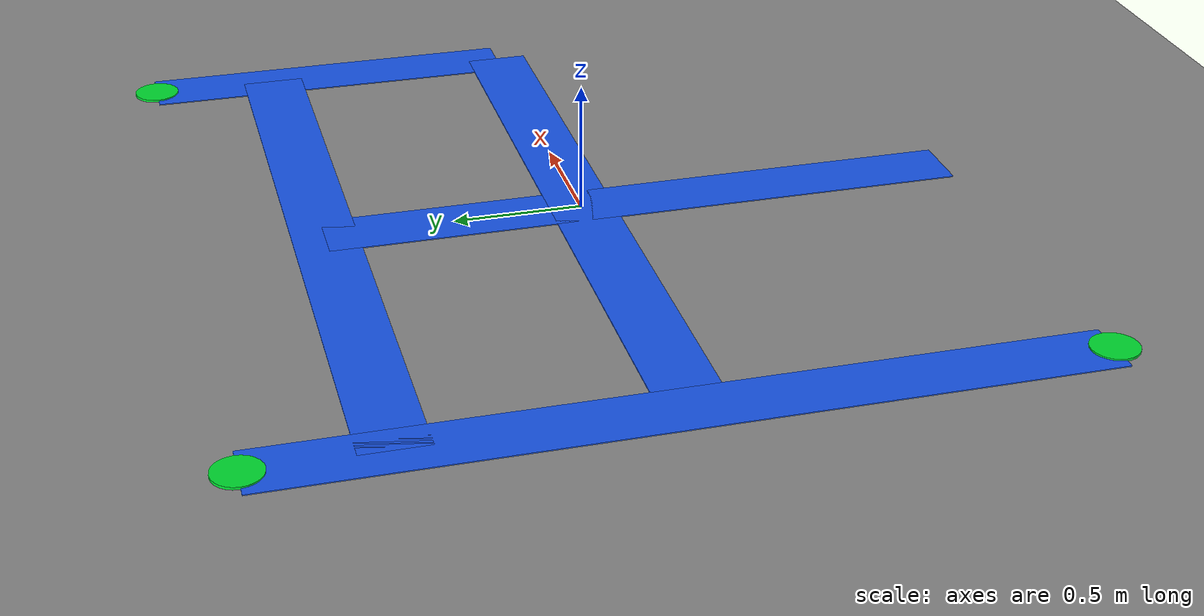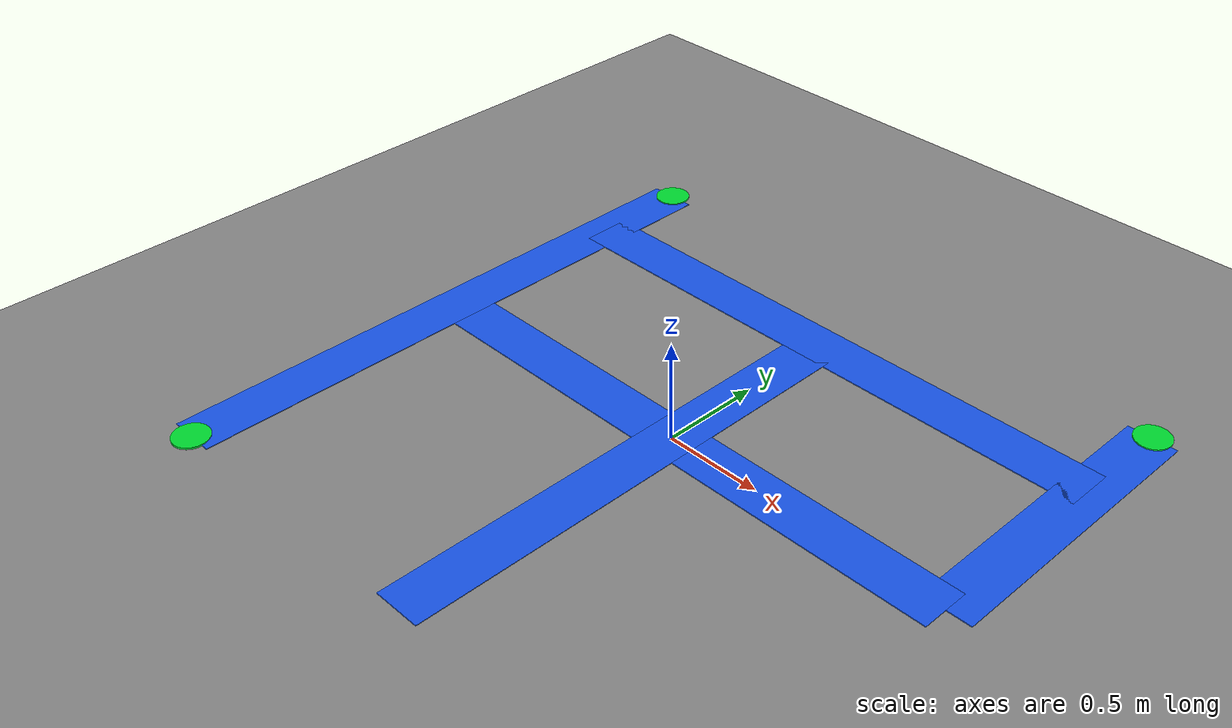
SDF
<?xml version="1.0"?>
<sdf version="1.9">
  <world name="default">

    <!-- Physics -->
    <physics name="physics" type="ignored">
      <max_step_size>0.001</max_step_size>
      <real_time_factor>1.0</real_time_factor>
    </physics>

    <!-- Gazebo systems -->
    <plugin filename="gz-sim-physics-system"
            name="gz::sim::systems::Physics"/>
    <plugin filename="gz-sim-user-commands-system"
            name="gz::sim::systems::UserCommands"/>
    <plugin filename="gz-sim-scene-broadcaster-system"
            name="gz::sim::systems::SceneBroadcaster"/>
    <plugin filename="gz-sim-sensors-system"
            name="gz::sim::systems::Sensors">
      <render_engine>ogre2</render_engine>
    </plugin>

    <!-- Background and ambient lighting -->
    <scene>
      <ambient>0.6 0.6 0.6 1</ambient>
      <background>0.8 0.8 0.8 1</background>
      <shadows>false</shadows>
    </scene>

    <!-- Sunlight -->
    <light name="sun" type="directional">
      <cast_shadows>false</cast_shadows>
      <pose>0 0 10 0 0 0</pose>
      <diffuse>0.9 0.9 0.9 1</diffuse>
      <specular>0.1 0.1 0.1 1</specular>
      <direction>-0.3 -0.3 -1</direction>
    </light>

    <!-- Gray floor -->
    <model name="ground_plane">
      <static>true</static>
      <link name="ground">
        <collision name="collision">
          <geometry>
            <plane>
              <normal>0 0 1</normal>
              <size>100 100</size>
            </plane>
          </geometry>
        </collision>
        <visual name="visual">
          <geometry>
            <plane>
              <normal>0 0 1</normal>
              <size>100 100</size>
            </plane>
          </geometry>
          <material>
            <ambient>0.45 0.45 0.45 1</ambient>
            <diffuse>0.55 0.55 0.55 1</diffuse>
          </material>
        </visual>
      </link>
    </model>

    <!-- LEFT VERTICAL ROAD -->
    <model name="left_road">
      <static>true</static>
      <pose>-1.5 0 0.002 0 0 0</pose>
      <link name="body">
        <visual name="visual">
          <geometry>
            <box><size>0.25 3.0 0.004</size></box>
          </geometry>
          <material>
            <ambient>0.1 0.35 0.95 1</ambient>
            <diffuse>0.1 0.35 0.95 1</diffuse>
          </material>
        </visual>
      </link>
    </model>

    <!-- CENTER VERTICAL ROAD -->
    <model name="center_road">
      <static>true</static>
      <pose>0 -0.25 0.002 0 0 0</pose>
      <link name="body">
        <visual name="visual">
          <geometry>
            <box><size>0.25 2.5 0.004</size></box>
          </geometry>
          <material>
            <ambient>0.1 0.35 0.95 1</ambient>
            <diffuse>0.1 0.35 0.95 1</diffuse>
          </material>
        </visual>
      </link>
    </model>

    <!-- RIGHT VERTICAL ROAD -->
    <model name="right_road">
      <static>true</static>
      <pose>1.5 0.75 0.002 0 0 0</pose>
      <link name="body">
        <visual name="visual">
          <geometry>
            <box><size>0.25 1.5 0.004</size></box>
          </geometry>
          <material>
            <ambient>0.1 0.35 0.95 1</ambient>
            <diffuse>0.1 0.35 0.95 1</diffuse>
          </material>
        </visual>
      </link>
    </model>

    <!-- UPPER HORIZONTAL ROAD -->
    <model name="upper_road">
      <static>true</static>
      <pose>0 1.0 0.002 0 0 0</pose>
      <link name="body">
        <visual name="visual">
          <geometry>
            <box><size>3.0 0.25 0.004</size></box>
          </geometry>
          <material>
            <ambient>0.1 0.35 0.95 1</ambient>
            <diffuse>0.1 0.35 0.95 1</diffuse>
          </material>
        </visual>
      </link>
    </model>

    <!-- LOWER HORIZONTAL ROAD -->
    <model name="lower_road">
      <static>true</static>
      <pose>0 0 0.002 0 0 0</pose>
      <link name="body">
        <visual name="visual">
          <geometry>
            <box><size>3.0 0.25 0.004</size></box>
          </geometry>
          <material>
            <ambient>0.1 0.35 0.95 1</ambient>
            <diffuse>0.1 0.35 0.95 1</diffuse>
          </material>
        </visual>
      </link>
    </model>

    <!-- PATROL STATION P1 -->
    <model name="P1">
      <static>true</static>
      <pose>-1.5 1.5 0.005 0 0 0</pose>
      <link name="body">
        <visual name="visual">
          <geometry>
            <cylinder>
              <radius>0.09</radius>
              <length>0.01</length>
            </cylinder>
          </geometry>
          <material>
            <ambient>0 0.9 0.2 1</ambient>
            <diffuse>0 0.9 0.2 1</diffuse>
          </material>
        </visual>
      </link>
    </model>

    <!-- PATROL STATION P2 -->
    <model name="P2">
      <static>true</static>
      <pose>-1.5 -1.5 0.005 0 0 0</pose>
      <link name="body">
        <visual name="visual">
          <geometry>
            <cylinder>
              <radius>0.09</radius>
              <length>0.01</length>
            </cylinder>
          </geometry>
          <material>
            <ambient>0 0.9 0.2 1</ambient>
            <diffuse>0 0.9 0.2 1</diffuse>
          </material>
        </visual>
      </link>
    </model>

    <!-- PATROL STATION P3 -->
    <model name="P3">
      <static>true</static>
      <pose>1.5 1.5 0.005 0 0 0</pose>
      <link name="body">
        <visual name="visual">
          <geometry>
            <cylinder>
              <radius>0.09</radius>
              <length>0.01</length>
            </cylinder>
          </geometry>
          <material>
            <ambient>0 0.9 0.2 1</ambient>
            <diffuse>0 0.9 0.2 1</diffuse>
          </material>
        </visual>
      </link>
    </model>

  </world>
</sdf>
